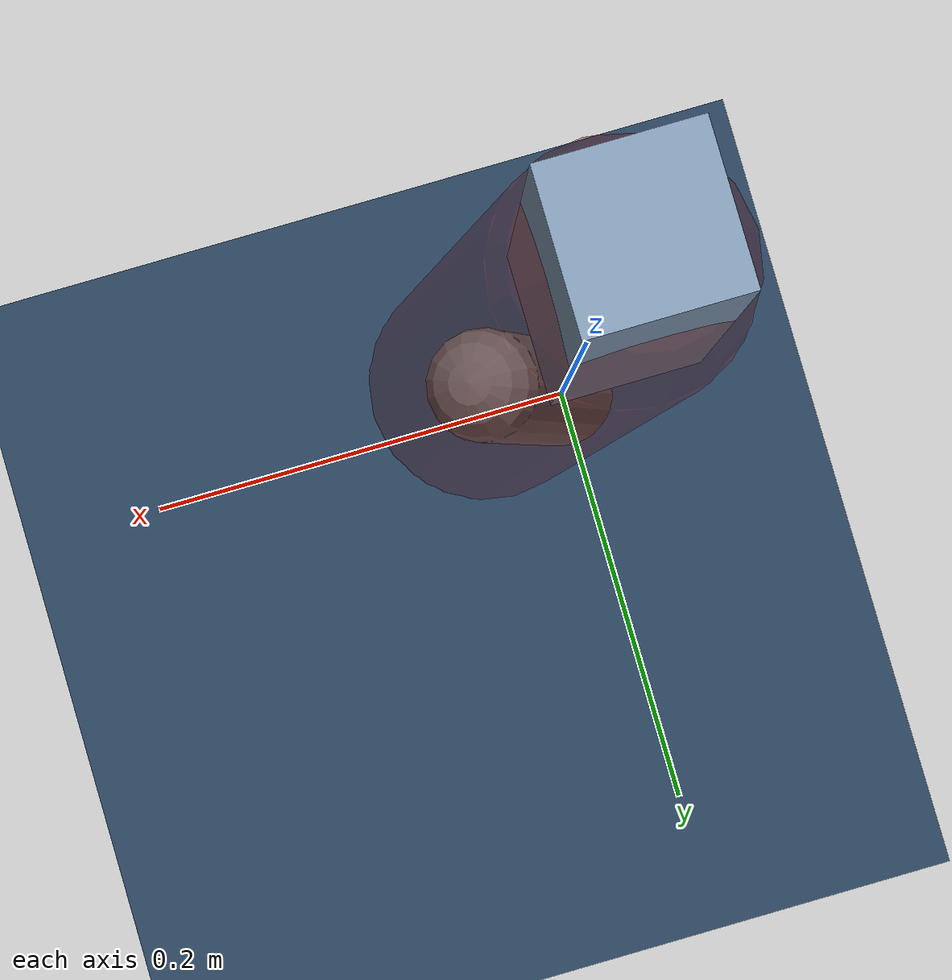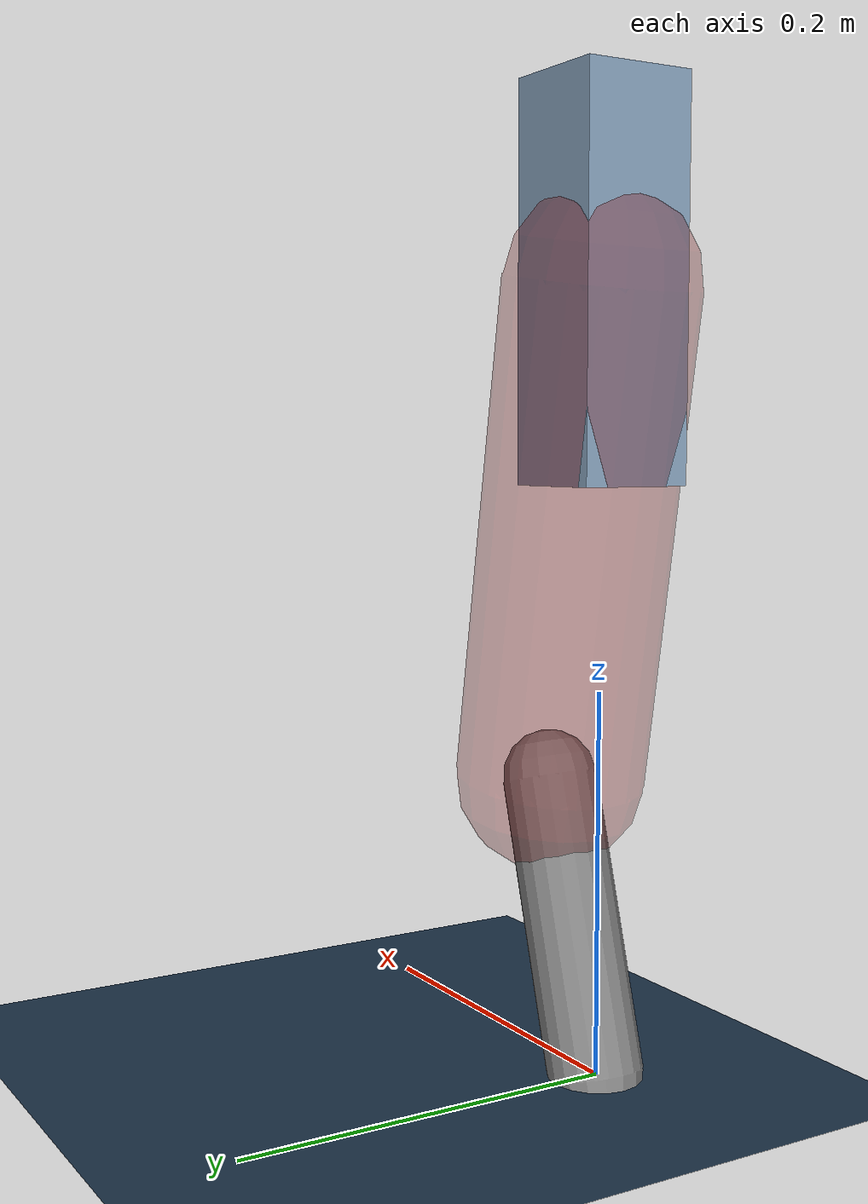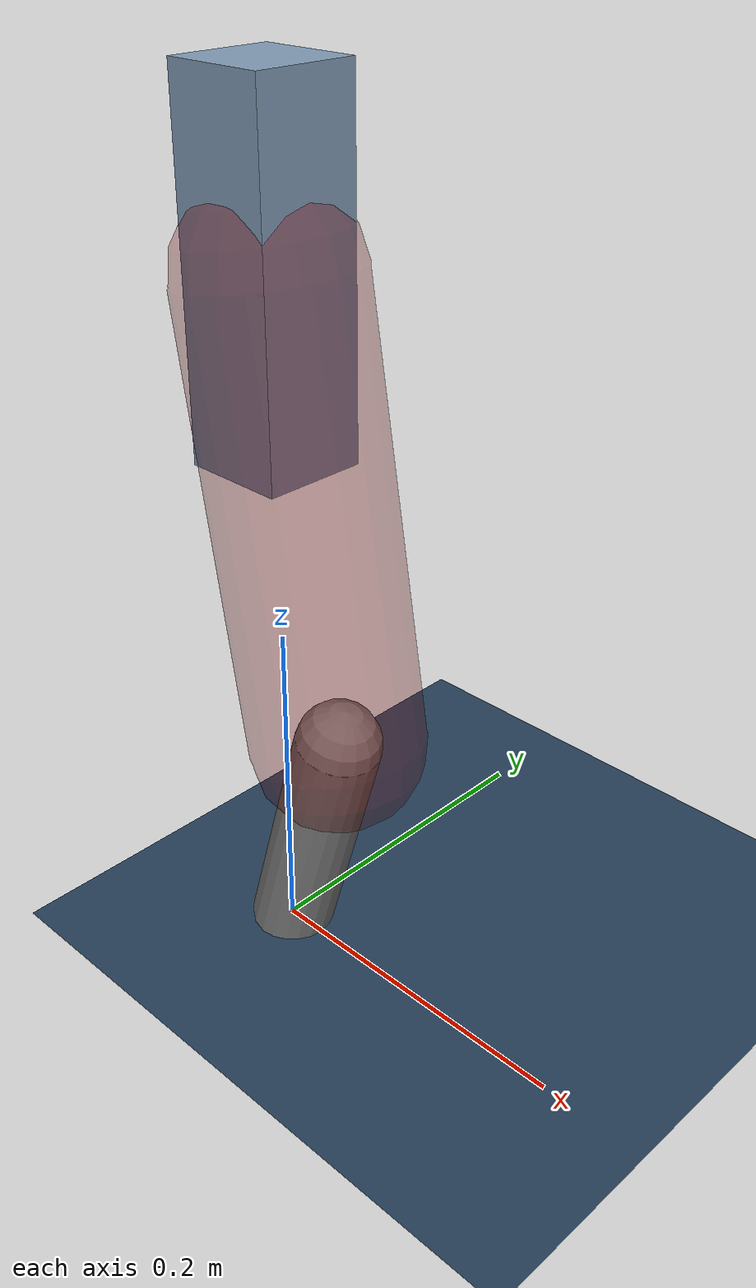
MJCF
<mujoco model="Hopper2D">
	<compiler inertiafromgeom="true" angle="radian" />
	<option timestep="0.001" integrator="implicit" cone="elliptic" solver="Newton" tolerance="1e-10" />

	<default>
		<geom contype="1" conaffinity="1" condim="3" friction="2 0.005 0.0001" solref="0.005 1" />
		<joint limited="true" damping="0.1" />
	</default>

	<asset>
		<texture name="skybox" type="skybox" builtin="gradient" rgb1=".4 .6 .8" rgb2="0 0 0" width="800" height="800" />
		<texture name="grid" type="2d" builtin="checker" rgb1=".1 .2 .3" rgb2=".2 .3 .4" width="300" height="300" mark="edge" markrgb=".2 .3 .4" />
		<material name="ground" texture="grid" texrepeat="1 1" texuniform="true" reflectance="0.1" />
		<material name="leg" rgba="0.5 0.6 0.7 1" />
	</asset>

	<worldbody>

		<geom name="floor" type="plane" size="5 5 0.25" material="ground" />

		<light directional="false" diffuse="0.8 0.8 0.8" specular="0.3 0.3 0.3" pos="0 0 2" dir="0 0 -1" />
		<light mode="targetbodycom" target="base" directional="false" diffuse="0.8 0.8 0.8" specular="0.3 0.3 0.3" pos="0 0 2" dir="0 0 -1" />

		<camera name="fixed" pos="0 -2 1" xyaxes="1 0 0 0 0 1" />
		<camera name="tracking" mode="trackcom" pos="0 -3 1" />

		<body name="root" pos="0 0 0.40459629117511453">
			<joint name="slide_x" type="slide" axis="1 0 0" range="-100 100" />
			<joint name="slide_z" type="slide" axis="0 0 1" range="0 10" />

			<body name="base" pos="0 0 0">
				<geom name="torso" type="box" size="0.03 0.03 0.1" mass="2.089" material="leg" />

				<body name="link1" pos="0 0 0" euler="0 1.4009425172055152 0">
					<joint type="hinge" axis="0 -1 0" pos="0 0 0" name="hinge1" limited="true" range="-3.14 3.14" stiffness="0" damping="0.1" />
					<geom name="thigh" type="capsule" fromto="0 0 0 0.2588720141333972 0 0" size="0.05" rgba="0.5 0 0 0.3" mass="0.8794672367468328" />

					<body name="link2" pos="0.2588720141333972 0 0" euler="0 0.454694789618084 0">
						<joint type="hinge" axis="0 -1 0" pos="0 0 0" name="hinge2" limited="true" range="-3.14 3.14" stiffness="0" damping="0.1" />
						<geom name="shank" type="capsule" fromto="0 0 0 0.15572427704171735 0 0" size="0.025" mass="0.3627518493375456" />

					</body>
				</body>
			</body>
		</body>
	</worldbody>

	<actuator>
		<motor name="torque1" joint="hinge1" ctrlrange="-64.7281464304844 64.7281464304844" ctrllimited="true" gear="1" />
		<motor name="torque2" joint="hinge2" ctrlrange="-57.51956611875266 57.51956611875266" ctrllimited="true" gear="1" />
	</actuator>
</mujoco>
